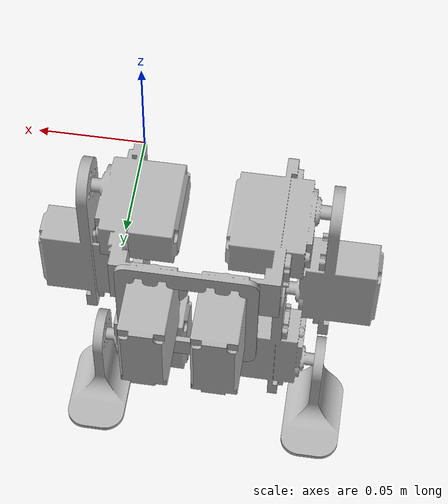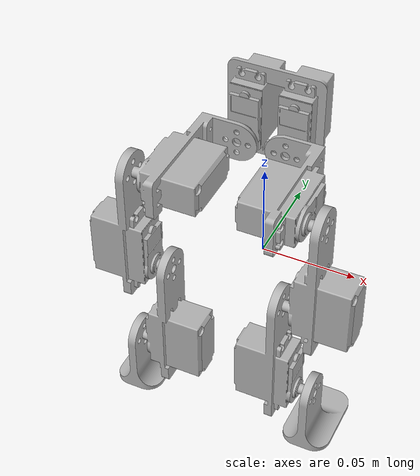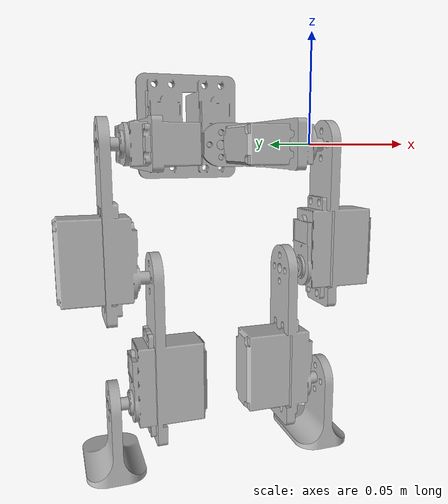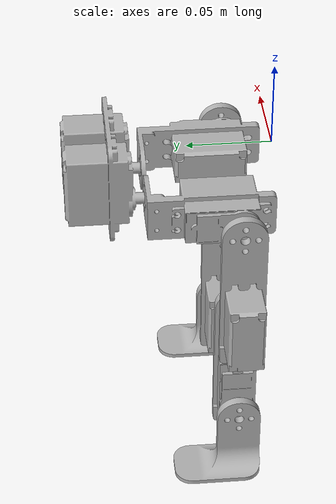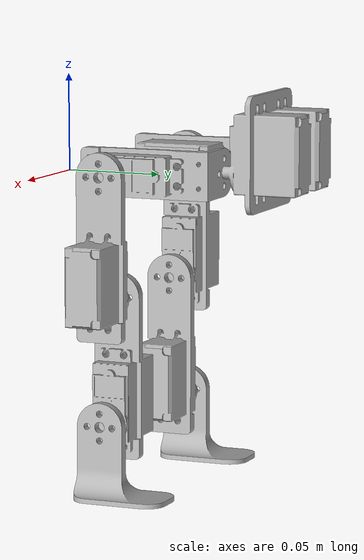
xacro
<?xml version="1.0" ?>
<robot name="HumanoidTNK_FINAL" xmlns:xacro="http://www.ros.org/wiki/xacro">

<xacro:include filename="$(find HumanoidTNK_FINAL_description)/urdf/materials.xacro" />
<xacro:include filename="$(find HumanoidTNK_FINAL_description)/urdf/HumanoidTNK_FINAL.trans" />
<xacro:include filename="$(find HumanoidTNK_FINAL_description)/urdf/HumanoidTNK_FINAL.gazebo" />
<link name="base_link">
  <inertial>
    <origin xyz="-0.035 0.10279289341113865 0.010349364700568861" rpy="0 0 0"/>
    <mass value="0.5061463781090482"/>
    <inertia ixx="0.000138" iyy="0.000217" izz="0.000191" ixy="0.0" iyz="-2e-06" ixz="-0.0"/>
  </inertial>
  <visual>
    <origin xyz="0 0 0" rpy="0 0 0"/>
    <geometry>
      <mesh filename="package://HumanoidTNK_FINAL_description/meshes/base_link.stl" scale="0.001 0.001 0.001"/>
    </geometry>
    <material name="silver"/>
  </visual>
  <collision>
    <origin xyz="0 0 0" rpy="0 0 0"/>
    <geometry>
      <mesh filename="package://HumanoidTNK_FINAL_description/meshes/base_link.stl" scale="0.001 0.001 0.001"/>
    </geometry>
  </collision>
</link>

<link name="LU1_1">
  <inertial>
    <origin xyz="0.014737018535811445 -0.0371713782757851 -4.203744456127302e-05" rpy="0 0 0"/>
    <mass value="0.2844526194367301"/>
    <inertia ixx="8.8e-05" iyy="4.1e-05" izz="0.000107" ixy="4e-06" iyz="-0.0" ixz="0.0"/>
  </inertial>
  <visual>
    <origin xyz="0.02 -0.078 -0.0001" rpy="0 0 0"/>
    <geometry>
      <mesh filename="package://HumanoidTNK_FINAL_description/meshes/LU1_1.stl" scale="0.001 0.001 0.001"/>
    </geometry>
    <material name="silver"/>
  </visual>
  <collision>
    <origin xyz="0.02 -0.078 -0.0001" rpy="0 0 0"/>
    <geometry>
      <mesh filename="package://HumanoidTNK_FINAL_description/meshes/LU1_1.stl" scale="0.001 0.001 0.001"/>
    </geometry>
  </collision>
</link>

<link name="RU1_1">
  <inertial>
    <origin xyz="-0.014737018535811441 -0.037171378275785136 -4.203744456126401e-05" rpy="0 0 0"/>
    <mass value="0.28445261943673006"/>
    <inertia ixx="8.8e-05" iyy="4.1e-05" izz="0.000107" ixy="-4e-06" iyz="-0.0" ixz="-0.0"/>
  </inertial>
  <visual>
    <origin xyz="0.05 -0.078 -0.0001" rpy="0 0 0"/>
    <geometry>
      <mesh filename="package://HumanoidTNK_FINAL_description/meshes/RU1_1.stl" scale="0.001 0.001 0.001"/>
    </geometry>
    <material name="silver"/>
  </visual>
  <collision>
    <origin xyz="0.05 -0.078 -0.0001" rpy="0 0 0"/>
    <geometry>
      <mesh filename="package://HumanoidTNK_FINAL_description/meshes/RU1_1.stl" scale="0.001 0.001 0.001"/>
    </geometry>
  </collision>
</link>

<link name="RU2_1">
  <inertial>
    <origin xyz="-0.0067332395533725165 -5.440092820663267e-15 -0.049354087833163966" rpy="0 0 0"/>
    <mass value="0.2906409525472912"/>
    <inertia ixx="0.00012" iyy="0.000138" izz="3.9e-05" ixy="-0.0" iyz="0.0" ixz="-5e-06"/>
  </inertial>
  <visual>
    <origin xyz="0.08975 -0.0273 -5e-05" rpy="0 0 0"/>
    <geometry>
      <mesh filename="package://HumanoidTNK_FINAL_description/meshes/RU2_1.stl" scale="0.001 0.001 0.001"/>
    </geometry>
    <material name="silver"/>
  </visual>
  <collision>
    <origin xyz="0.08975 -0.0273 -5e-05" rpy="0 0 0"/>
    <geometry>
      <mesh filename="package://HumanoidTNK_FINAL_description/meshes/RU2_1.stl" scale="0.001 0.001 0.001"/>
    </geometry>
  </collision>
</link>

<link name="LU2_1">
  <inertial>
    <origin xyz="0.006733239553372541 -5.401928904191777e-15 -0.049354087833163994" rpy="0 0 0"/>
    <mass value="0.2906409525472912"/>
    <inertia ixx="0.00012" iyy="0.000138" izz="3.9e-05" ixy="0.0" iyz="0.0" ixz="5e-06"/>
  </inertial>
  <visual>
    <origin xyz="-0.01975 -0.0273 -5e-05" rpy="0 0 0"/>
    <geometry>
      <mesh filename="package://HumanoidTNK_FINAL_description/meshes/LU2_1.stl" scale="0.001 0.001 0.001"/>
    </geometry>
    <material name="silver"/>
  </visual>
  <collision>
    <origin xyz="-0.01975 -0.0273 -5e-05" rpy="0 0 0"/>
    <geometry>
      <mesh filename="package://HumanoidTNK_FINAL_description/meshes/LU2_1.stl" scale="0.001 0.001 0.001"/>
    </geometry>
  </collision>
</link>

<link name="RU3_1">
  <inertial>
    <origin xyz="0.006733239553372503 5.7592819402429996e-15 -0.049354087833164" rpy="0 0 0"/>
    <mass value="0.2906409525472912"/>
    <inertia ixx="0.00012" iyy="0.000138" izz="3.9e-05" ixy="-0.0" iyz="-0.0" ixz="5e-06"/>
  </inertial>
  <visual>
    <origin xyz="0.07225 -0.0273 0.0644" rpy="0 0 0"/>
    <geometry>
      <mesh filename="package://HumanoidTNK_FINAL_description/meshes/RU3_1.stl" scale="0.001 0.001 0.001"/>
    </geometry>
    <material name="silver"/>
  </visual>
  <collision>
    <origin xyz="0.07225 -0.0273 0.0644" rpy="0 0 0"/>
    <geometry>
      <mesh filename="package://HumanoidTNK_FINAL_description/meshes/RU3_1.stl" scale="0.001 0.001 0.001"/>
    </geometry>
  </collision>
</link>

<link name="LU3_1">
  <inertial>
    <origin xyz="-0.006733239553372511 5.793976409762536e-15 -0.04935408783316399" rpy="0 0 0"/>
    <mass value="0.2906409525472912"/>
    <inertia ixx="0.00012" iyy="0.000138" izz="3.9e-05" ixy="0.0" iyz="-0.0" ixz="-5e-06"/>
  </inertial>
  <visual>
    <origin xyz="-0.00225 -0.0273 0.0644" rpy="0 0 0"/>
    <geometry>
      <mesh filename="package://HumanoidTNK_FINAL_description/meshes/LU3_1.stl" scale="0.001 0.001 0.001"/>
    </geometry>
    <material name="silver"/>
  </visual>
  <collision>
    <origin xyz="-0.00225 -0.0273 0.0644" rpy="0 0 0"/>
    <geometry>
      <mesh filename="package://HumanoidTNK_FINAL_description/meshes/LU3_1.stl" scale="0.001 0.001 0.001"/>
    </geometry>
  </collision>
</link>

<link name="LU4_1">
  <inertial>
    <origin xyz="-0.01975 -0.0273 0.12885" rpy="0 0 0"/>
    <mass value="0.0"/>
    <inertia ixx="0.0" iyy="0.0" izz="0.0" ixy="0.0" iyz="0.0" ixz="0.0"/>
  </inertial>
  <visual>
    <origin xyz="-0.01975 -0.0273 0.12885" rpy="0 0 0"/>
    <geometry>
      <mesh filename="package://HumanoidTNK_FINAL_description/meshes/LU4_1.stl" scale="0.001 0.001 0.001"/>
    </geometry>
    <material name="silver"/>
  </visual>
  <collision>
    <origin xyz="-0.01975 -0.0273 0.12885" rpy="0 0 0"/>
    <geometry>
      <mesh filename="package://HumanoidTNK_FINAL_description/meshes/LU4_1.stl" scale="0.001 0.001 0.001"/>
    </geometry>
  </collision>
</link>

<link name="RU4_1">
  <inertial>
    <origin xyz="0.08975 -0.0273 0.12885" rpy="0 0 0"/>
    <mass value="0.0"/>
    <inertia ixx="0.0" iyy="0.0" izz="0.0" ixy="0.0" iyz="0.0" ixz="0.0"/>
  </inertial>
  <visual>
    <origin xyz="0.08975 -0.0273 0.12885" rpy="0 0 0"/>
    <geometry>
      <mesh filename="package://HumanoidTNK_FINAL_description/meshes/RU4_1.stl" scale="0.001 0.001 0.001"/>
    </geometry>
    <material name="silver"/>
  </visual>
  <collision>
    <origin xyz="0.08975 -0.0273 0.12885" rpy="0 0 0"/>
    <geometry>
      <mesh filename="package://HumanoidTNK_FINAL_description/meshes/RU4_1.stl" scale="0.001 0.001 0.001"/>
    </geometry>
  </collision>
</link>

<joint name="ñ] 1" type="revolute">
  <origin xyz="-0.02 0.078 0.0001" rpy="0 0 0"/>
  <parent link="base_link"/>
  <child link="LU1_1"/>
  <axis xyz="0.0 -1.0 -0.0"/>
  <limit upper="1.570796" lower="-1.570796" effort="100" velocity="100"/>
</joint>

<joint name="ñ] 2" type="revolute">
  <origin xyz="-0.05 0.078 0.0001" rpy="0 0 0"/>
  <parent link="base_link"/>
  <child link="RU1_1"/>
  <axis xyz="0.0 -1.0 -0.0"/>
  <limit upper="1.570796" lower="-1.570796" effort="100" velocity="100"/>
</joint>

<joint name="ñ] 3" type="revolute">
  <origin xyz="-0.03975 -0.0507 -5e-05" rpy="0 0 0"/>
  <parent link="RU1_1"/>
  <child link="RU2_1"/>
  <axis xyz="-1.0 0.0 0.0"/>
  <limit upper="1.570796" lower="-1.570796" effort="100" velocity="100"/>
</joint>

<joint name="ñ] 4" type="revolute">
  <origin xyz="0.03975 -0.0507 -5e-05" rpy="0 0 0"/>
  <parent link="LU1_1"/>
  <child link="LU2_1"/>
  <axis xyz="1.0 0.0 -0.0"/>
  <limit upper="1.570796" lower="-1.570796" effort="100" velocity="100"/>
</joint>

<joint name="ñ] 5" type="revolute">
  <origin xyz="0.0175 0.0 -0.06445" rpy="0 0 0"/>
  <parent link="RU2_1"/>
  <child link="RU3_1"/>
  <axis xyz="1.0 0.0 0.0"/>
  <limit upper="1.570796" lower="-1.570796" effort="100" velocity="100"/>
</joint>

<joint name="ñ] 6" type="revolute">
  <origin xyz="-0.0175 0.0 -0.06445" rpy="0 0 0"/>
  <parent link="LU2_1"/>
  <child link="LU3_1"/>
  <axis xyz="1.0 0.0 -0.0"/>
  <limit upper="1.570796" lower="-1.570796" effort="100" velocity="100"/>
</joint>

<joint name="ñ] 7" type="revolute">
  <origin xyz="0.0175 0.0 -0.06445" rpy="0 0 0"/>
  <parent link="LU3_1"/>
  <child link="LU4_1"/>
  <axis xyz="1.0 0.0 -0.0"/>
  <limit upper="1.570796" lower="-1.570796" effort="100" velocity="100"/>
</joint>

<joint name="ñ] 8" type="revolute">
  <origin xyz="-0.0175 0.0 -0.06445" rpy="0 0 0"/>
  <parent link="RU3_1"/>
  <child link="RU4_1"/>
  <axis xyz="-1.0 0.0 0.0"/>
  <limit upper="1.570796" lower="-1.570796" effort="100" velocity="100"/>
</joint>

</robot>

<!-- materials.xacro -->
<robot name="HumanoidTNK_FINAL" xmlns:xacro="http://www.ros.org/wiki/xacro" >

<material name="silver">
  <color rgba="0.700 0.700 0.700 1.000"/>
</material>

</robot>

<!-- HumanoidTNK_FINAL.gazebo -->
<robot name="HumanoidTNK_FINAL" xmlns:xacro="http://www.ros.org/wiki/xacro" >

<xacro:property name="body_color" value="Gazebo/Silver" />

<gazebo>
  <plugin name="control" filename="libgazebo_ros_control.so"/>
</gazebo>
<gazebo reference="base_link">
  <material>${body_color}</material>
  <mu1>0.2</mu1>
  <mu2>0.2</mu2>
  <selfCollide>true</selfCollide>
  <gravity>true</gravity>
</gazebo>

<gazebo reference="LU1_1">
  <material>${body_color}</material>
  <mu1>0.2</mu1>
  <mu2>0.2</mu2>
  <selfCollide>true</selfCollide>
</gazebo>

<gazebo reference="RU1_1">
  <material>${body_color}</material>
  <mu1>0.2</mu1>
  <mu2>0.2</mu2>
  <selfCollide>true</selfCollide>
</gazebo>

<gazebo reference="RU2_1">
  <material>${body_color}</material>
  <mu1>0.2</mu1>
  <mu2>0.2</mu2>
  <selfCollide>true</selfCollide>
</gazebo>

<gazebo reference="LU2_1">
  <material>${body_color}</material>
  <mu1>0.2</mu1>
  <mu2>0.2</mu2>
  <selfCollide>true</selfCollide>
</gazebo>

<gazebo reference="RU3_1">
  <material>${body_color}</material>
  <mu1>0.2</mu1>
  <mu2>0.2</mu2>
  <selfCollide>true</selfCollide>
</gazebo>

<gazebo reference="LU3_1">
  <material>${body_color}</material>
  <mu1>0.2</mu1>
  <mu2>0.2</mu2>
  <selfCollide>true</selfCollide>
</gazebo>

<gazebo reference="LU4_1">
  <material>${body_color}</material>
  <mu1>0.2</mu1>
  <mu2>0.2</mu2>
  <selfCollide>true</selfCollide>
</gazebo>

<gazebo reference="RU4_1">
  <material>${body_color}</material>
  <mu1>0.2</mu1>
  <mu2>0.2</mu2>
  <selfCollide>true</selfCollide>
</gazebo>

</robot>
